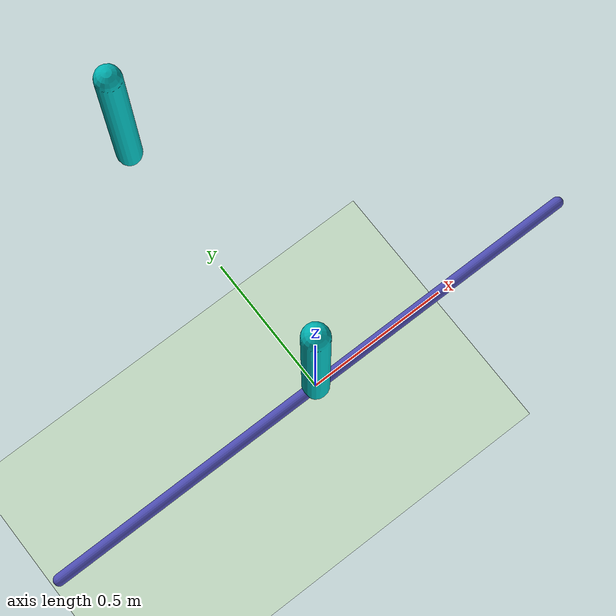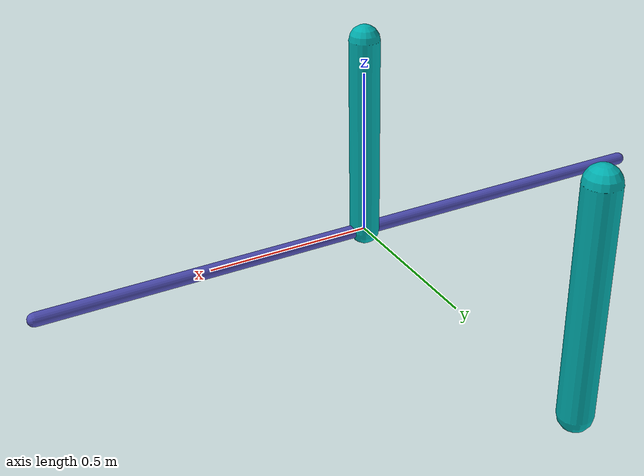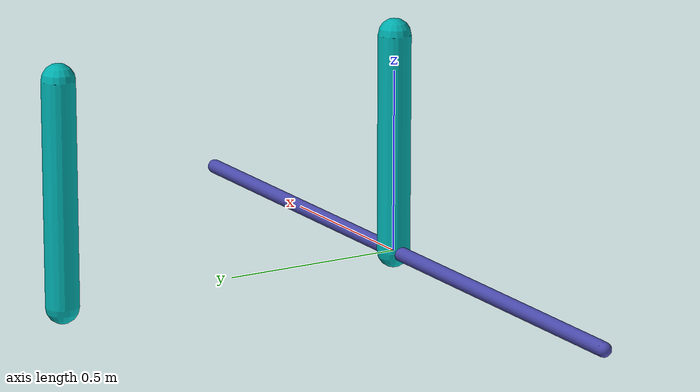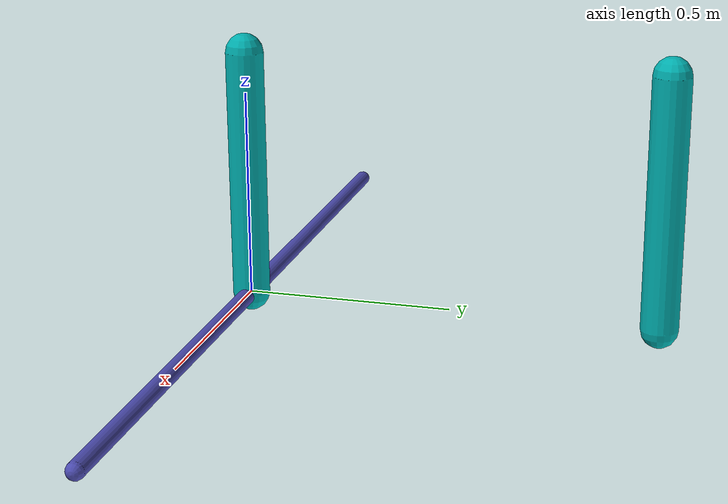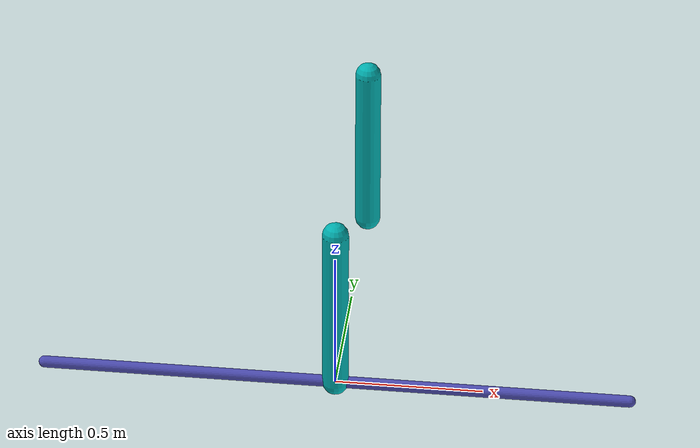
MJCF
<mujoco model="cartpole">
  <compiler coordinate="local" inertiafromgeom="true"/>
  <custom>
    <numeric data="2" name="frame_skip"/>
  </custom>
  <default>
    <joint damping="0.05"/>
    <geom contype="0" friction="1 0.1 0.1" rgba="0.7 0.7 0 1"/>
  </default>
  <option gravity="1e-5 0 -9.81" integrator="RK4" timestep="0.01"/>
  <size nstack="3000"/>
  <worldbody>
    <geom name="floor" pos="0 0 -3.0" rgba="0.8 0.9 0.8 1" size="40 40 40" type="plane"/>
    <geom name="rail" pos="0 0 0" quat="0.707 0 0.707 0" rgba="0.3 0.3 0.7 1" size="0.02 1" type="capsule"/>
    <body name="pole" pos="0 0 0">
      <joint axis="0 0 1" name="hinge" pos="0 0 0" type="hinge"/>
      <geom fromto="0 0 0 0 0 0.6" name="cpole" rgba="0 0.7 0.7 1" size="0.045 0.3" type="capsule"/>
      <body name="pole2" pos="0 1 0">
        <joint axis="0 0 1" name="hinge2" pos="0 0 0" type="hinge"/>
        <geom fromto="0 0 0 0 0 0.6" name="cpole2" rgba="0 0.7 0.7 1" size="0.045 0.3" type="capsule"/>
        <site name="tip" pos="0 0 .6" size="0.01 0.01"/>
        <body name="pole3" pos="0 1 0">
          <joint axis="0 0 1" name="hinge3" pos="0 0 0" type="hinge"/>
          <body name="pole4" pos="0 1 0">
            <joint axis="0 0 1" name="hinge4" pos="0 0 0" type="hinge"/>
            <body name="pole5" pos="0 1 0">
              <joint axis="0 0 1" name="hinge5" pos="0 0 0" type="hinge"/>
              <body name="pole6" pos="0 1 0">
                <joint axis="0 0 1" name="hinge6" pos="0 0 0" type="hinge"/>
                <body name="pole7" pos="0 1 0">
                  <joint axis="0 0 1" name="hinge7" pos="0 0 0" type="hinge"/>
                  <body name="pole8" pos="0 1 0">
                    <joint axis="0 0 1" name="hinge8" pos="0 0 0" type="hinge"/>
                    <body name="pole9" pos="0 1 0">
                      <joint axis="0 0 1" name="hinge9" pos="0 0 0" type="hinge"/>
                      <body name="pole10" pos="0 1 0">
                        <joint axis="0 0 1" name="hinge10" pos="0 0 0" type="hinge"/>
                      </body>
                    </body>
                  </body>
                </body>
              </body>
            </body>
          </body>
        </body>
      </body>
    </body>
  </worldbody>
  <actuator>
    <motor ctrllimited="true" ctrlrange="-1 1" gear="500" joint="slider" name="slide"/>
  </actuator>
</mujoco>
